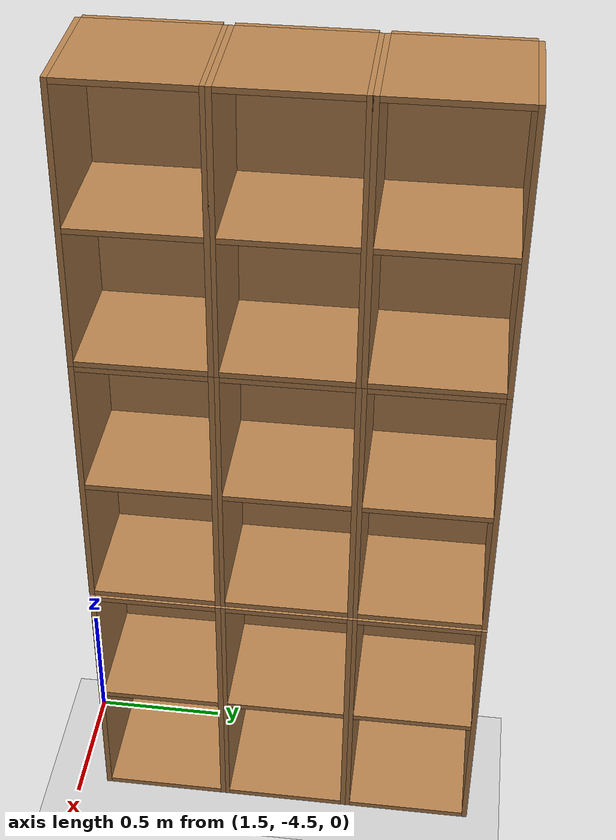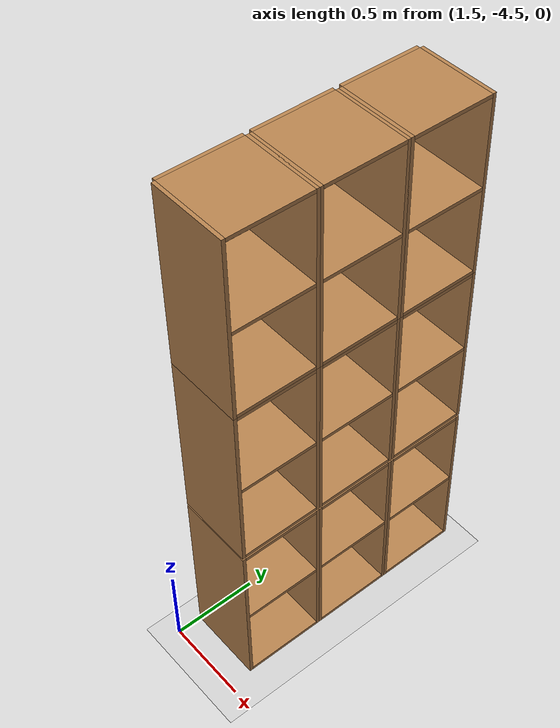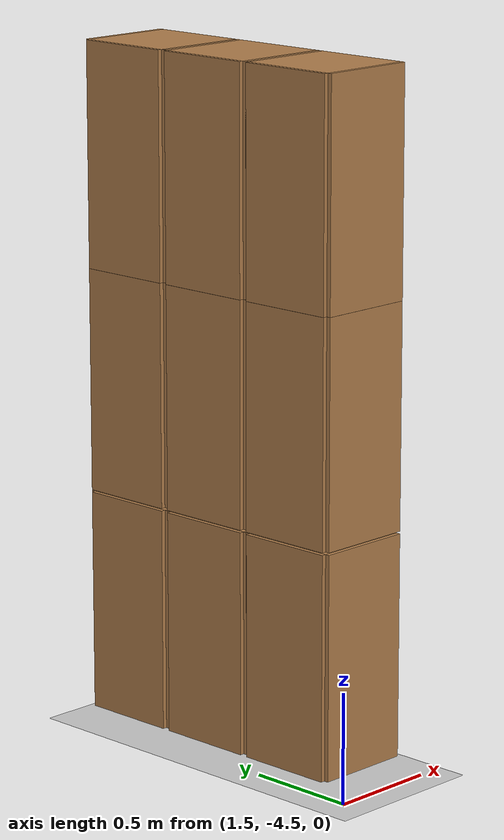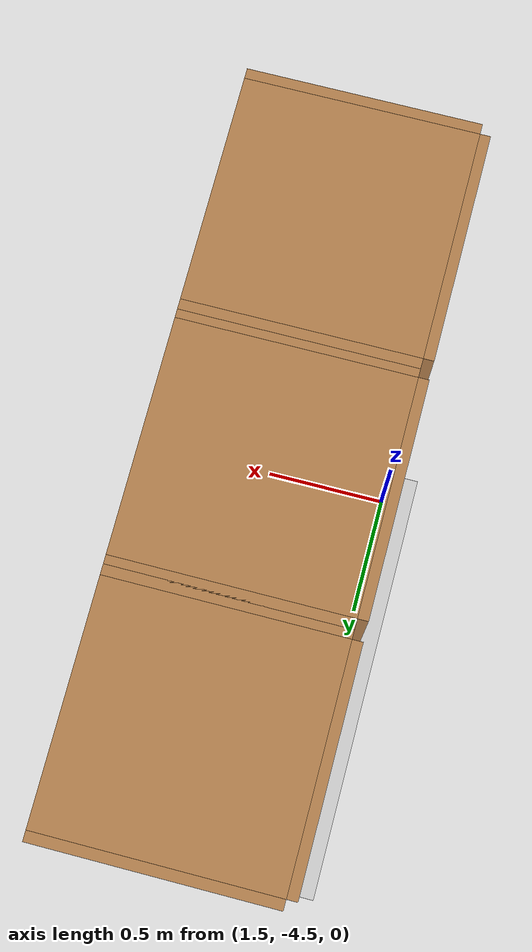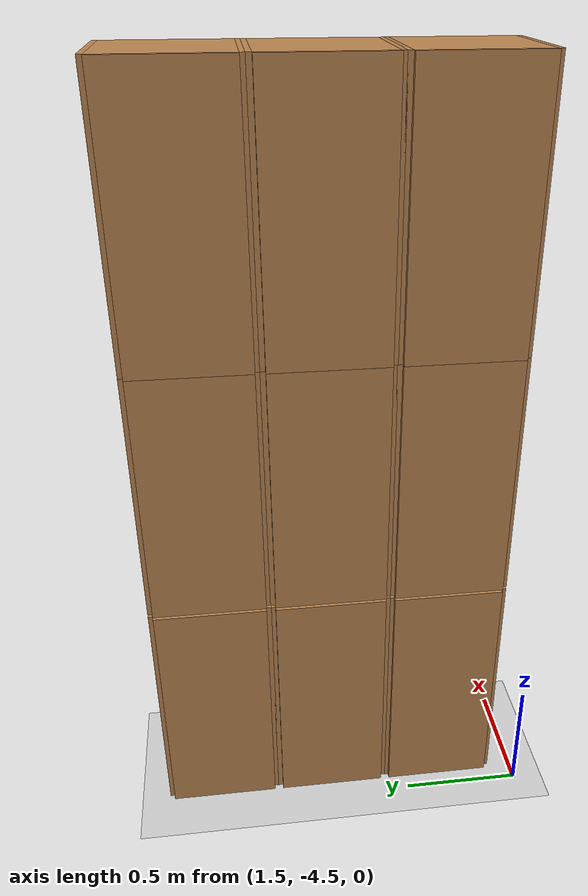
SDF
<sdf version="1.6">
 <world name="default">
  <model name="ground_plane">
   <static>1</static>
   <link name="link">
    <collision name="collision">
     <geometry><plane><normal>0 0 1</normal><size>100 100</size></plane></geometry>
     <surface>
      <contact><collide_bitmask>65535</collide_bitmask></contact>
      <friction><ode><mu>100</mu><mu2>50</mu2></ode></friction>
     </surface>
    </collision>
    <visual name="visual">
     <cast_shadows>0</cast_shadows>
     <geometry><plane><normal>0 0 1</normal><size>100 100</size></plane></geometry>
     <material>
      <script><uri>file://media/materials/scripts/gazebo.material</uri><name>Gazebo/Grey</name></script>
     </material>
    </visual>
   </link>
  </model>
  <model name="Locker18_clone_4_clone_2_clone_1_clone_clone_clone_3_clone">
   <model name="Locker18">
    <model name="Locker3">
     <model name="cabinet">
      <static>1</static>
      <link name="cabinet_bottom_plate">
       <inertial>
        <pose>0 0 -1 0 -0 0</pose>
        <inertia><ixx>2.05</ixx><ixy>0</ixy><ixz>0</ixz><iyy>2.05</iyy><iyz>0</iyz><izz>2.05</izz></inertia>
        <mass>25</mass>
       </inertial>
       <collision name="cabinet_bottom_plate_geom">
        <pose>0 0 0.01 0 -0 0</pose>
        <geometry><box><size>0.45 0.45 0.02</size></box></geometry>
       </collision>
       <visual name="cabinet_bottom_plate_geom_visual">
        <pose>0 0 0.01 0 -0 0</pose>
        <geometry><box><size>0.45 0.45 0.02</size></box></geometry>
        <material>
         <script><uri>file://media/materials/scripts/gazebo.material</uri><name>Gazebo/Wood</name></script>
        </material>
       </visual>
       <collision name="cabinet_bottom_plate_geom_cabinet_back_plate">
        <pose>0.235 0 0.51 0 -0 0</pose>
        <geometry><box><size>0.02 0.45 1.02</size></box></geometry>
       </collision>
       <visual name="cabinet_bottom_plate_geom_cabinet_back_plate_visual">
        <pose>0.235 0 0.51 0 -0 0</pose>
        <geometry><box><size>0.02 0.45 1.02</size></box></geometry>
        <material>
         <script><uri>file://media/materials/scripts/gazebo.material</uri><name>Gazebo/Wood</name></script>
        </material>
       </visual>
       <collision name="cabinet_bottom_plate_geom_cabinet_left_plate">
        <pose>0 0.235 0.51 0 -0 0</pose>
        <geometry><box><size>0.45 0.02 1.02</size></box></geometry>
       </collision>
       <visual name="cabinet_bottom_plate_geom_cabinet_left_plate_visual">
        <pose>0 0.235 0.51 0 -0 0</pose>
        <geometry><box><size>0.45 0.02 1.02</size></box></geometry>
        <material>
         <script><uri>file://media/materials/scripts/gazebo.material</uri><name>Gazebo/Wood</name></script>
        </material>
       </visual>
       <collision name="cabinet_bottom_plate_geom_cabinet_middle_plate">
        <pose>0 0 0.51 0 -0 0</pose>
        <geometry><box><size>0.45 0.45 0.02</size></box></geometry>
       </collision>
       <visual name="cabinet_bottom_plate_geom_cabinet_middle_plate_visual">
        <pose>0 0 0.51 0 -0 0</pose>
        <geometry><box><size>0.45 0.45 0.02</size></box></geometry>
        <material>
         <script><uri>file://media/materials/scripts/gazebo.material</uri><name>Gazebo/Wood</name></script>
        </material>
       </visual>
       <collision name="cabinet_bottom_plate_geom_cabinet_right_plate">
        <pose>0 -0.235 0.51 0 -0 0</pose>
        <geometry><box><size>0.45 0.02 1.02</size></box></geometry>
       </collision>
       <visual name="cabinet_bottom_plate_geom_cabinet_right_plate_visual">
        <pose>0 -0.235 0.51 0 -0 0</pose>
        <geometry><box><size>0.45 0.02 1.02</size></box></geometry>
        <material>
         <script><uri>file://media/materials/scripts/gazebo.material</uri><name>Gazebo/Wood</name></script>
        </material>
       </visual>
       <collision name="cabinet_bottom_plate_geom_cabinet_top_plate">
        <pose>0 0 1.01 0 -0 0</pose>
        <geometry><box><size>0.45 0.45 0.02</size></box></geometry>
       </collision>
       <visual name="cabinet_bottom_plate_geom_cabinet_top_plate_visual">
        <pose>0 0 1.01 0 -0 0</pose>
        <geometry><box><size>0.45 0.45 0.02</size></box></geometry>
        <material>
         <script><uri>file://media/materials/scripts/gazebo.material</uri><name>Gazebo/Wood</name></script>
        </material>
       </visual>
      </link>
      <pose>-0.676968 1.45758 0 0 -0 0</pose>
     </model>
     <model name="cabinet_clone">
      <static>1</static>
      <link name="cabinet_bottom_plate">
       <inertial>
        <pose>0 0 -1 0 -0 0</pose>
        <inertia><ixx>2.05</ixx><ixy>0</ixy><ixz>0</ixz><iyy>2.05</iyy><iyz>0</iyz><izz>2.05</izz></inertia>
        <mass>25</mass>
       </inertial>
       <collision name="cabinet_bottom_plate_geom">
        <pose>0 0 0.01 0 -0 0</pose>
        <geometry><box><size>0.45 0.45 0.02</size></box></geometry>
       </collision>
       <visual name="cabinet_bottom_plate_geom_visual">
        <pose>0 0 0.01 0 -0 0</pose>
        <geometry><box><size>0.45 0.45 0.02</size></box></geometry>
        <material>
         <script><uri>file://media/materials/scripts/gazebo.material</uri><name>Gazebo/Wood</name></script>
        </material>
       </visual>
       <collision name="cabinet_bottom_plate_geom_cabinet_back_plate">
        <pose>0.235 0 0.51 0 -0 0</pose>
        <geometry><box><size>0.02 0.45 1.02</size></box></geometry>
       </collision>
       <visual name="cabinet_bottom_plate_geom_cabinet_back_plate_visual">
        <pose>0.235 0 0.51 0 -0 0</pose>
        <geometry><box><size>0.02 0.45 1.02</size></box></geometry>
        <material>
         <script><uri>file://media/materials/scripts/gazebo.material</uri><name>Gazebo/Wood</name></script>
        </material>
       </visual>
       <collision name="cabinet_bottom_plate_geom_cabinet_left_plate">
        <pose>0 0.235 0.51 0 -0 0</pose>
        <geometry><box><size>0.45 0.02 1.02</size></box></geometry>
       </collision>
       <visual name="cabinet_bottom_plate_geom_cabinet_left_plate_visual">
        <pose>0 0.235 0.51 0 -0 0</pose>
        <geometry><box><size>0.45 0.02 1.02</size></box></geometry>
        <material>
         <script><uri>file://media/materials/scripts/gazebo.material</uri><name>Gazebo/Wood</name></script>
        </material>
       </visual>
       <collision name="cabinet_bottom_plate_geom_cabinet_middle_plate">
        <pose>0 0 0.51 0 -0 0</pose>
        <geometry><box><size>0.45 0.45 0.02</size></box></geometry>
       </collision>
       <visual name="cabinet_bottom_plate_geom_cabinet_middle_plate_visual">
        <pose>0 0 0.51 0 -0 0</pose>
        <geometry><box><size>0.45 0.45 0.02</size></box></geometry>
        <material>
         <script><uri>file://media/materials/scripts/gazebo.material</uri><name>Gazebo/Wood</name></script>
        </material>
       </visual>
       <collision name="cabinet_bottom_plate_geom_cabinet_right_plate">
        <pose>0 -0.235 0.51 0 -0 0</pose>
        <geometry><box><size>0.45 0.02 1.02</size></box></geometry>
       </collision>
       <visual name="cabinet_bottom_plate_geom_cabinet_right_plate_visual">
        <pose>0 -0.235 0.51 0 -0 0</pose>
        <geometry><box><size>0.45 0.02 1.02</size></box></geometry>
        <material>
         <script><uri>file://media/materials/scripts/gazebo.material</uri><name>Gazebo/Wood</name></script>
        </material>
       </visual>
       <collision name="cabinet_bottom_plate_geom_cabinet_top_plate">
        <pose>0 0 1.01 0 -0 0</pose>
        <geometry><box><size>0.45 0.45 0.02</size></box></geometry>
       </collision>
       <visual name="cabinet_bottom_plate_geom_cabinet_top_plate_visual">
        <pose>0 0 1.01 0 -0 0</pose>
        <geometry><box><size>0.45 0.45 0.02</size></box></geometry>
        <material>
         <script><uri>file://media/materials/scripts/gazebo.material</uri><name>Gazebo/Wood</name></script>
        </material>
       </visual>
      </link>
      <pose>-0.676968 0.970971 0 0 -0 0</pose>
     </model>
     <model name="cabinet_clone_0">
      <static>1</static>
      <link name="cabinet_bottom_plate">
       <inertial>
        <pose>0 0 -1 0 -0 0</pose>
        <inertia><ixx>2.05</ixx><ixy>0</ixy><ixz>0</ixz><iyy>2.05</iyy><iyz>0</iyz><izz>2.05</izz></inertia>
        <mass>25</mass>
       </inertial>
       <collision name="cabinet_bottom_plate_geom">
        <pose>0 0 0.01 0 -0 0</pose>
        <geometry><box><size>0.45 0.45 0.02</size></box></geometry>
       </collision>
       <visual name="cabinet_bottom_plate_geom_visual">
        <pose>0 0 0.01 0 -0 0</pose>
        <geometry><box><size>0.45 0.45 0.02</size></box></geometry>
        <material>
         <script><uri>file://media/materials/scripts/gazebo.material</uri><name>Gazebo/Wood</name></script>
        </material>
       </visual>
       <collision name="cabinet_bottom_plate_geom_cabinet_back_plate">
        <pose>0.235 0 0.51 0 -0 0</pose>
        <geometry><box><size>0.02 0.45 1.02</size></box></geometry>
       </collision>
       <visual name="cabinet_bottom_plate_geom_cabinet_back_plate_visual">
        <pose>0.235 0 0.51 0 -0 0</pose>
        <geometry><box><size>0.02 0.45 1.02</size></box></geometry>
        <material>
         <script><uri>file://media/materials/scripts/gazebo.material</uri><name>Gazebo/Wood</name></script>
        </material>
       </visual>
       <collision name="cabinet_bottom_plate_geom_cabinet_left_plate">
        <pose>0 0.235 0.51 0 -0 0</pose>
        <geometry><box><size>0.45 0.02 1.02</size></box></geometry>
       </collision>
       <visual name="cabinet_bottom_plate_geom_cabinet_left_plate_visual">
        <pose>0 0.235 0.51 0 -0 0</pose>
        <geometry><box><size>0.45 0.02 1.02</size></box></geometry>
        <material>
         <script><uri>file://media/materials/scripts/gazebo.material</uri><name>Gazebo/Wood</name></script>
        </material>
       </visual>
       <collision name="cabinet_bottom_plate_geom_cabinet_middle_plate">
        <pose>0 0 0.51 0 -0 0</pose>
        <geometry><box><size>0.45 0.45 0.02</size></box></geometry>
       </collision>
       <visual name="cabinet_bottom_plate_geom_cabinet_middle_plate_visual">
        <pose>0 0 0.51 0 -0 0</pose>
        <geometry><box><size>0.45 0.45 0.02</size></box></geometry>
        <material>
         <script><uri>file://media/materials/scripts/gazebo.material</uri><name>Gazebo/Wood</name></script>
        </material>
       </visual>
       <collision name="cabinet_bottom_plate_geom_cabinet_right_plate">
        <pose>0 -0.235 0.51 0 -0 0</pose>
        <geometry><box><size>0.45 0.02 1.02</size></box></geometry>
       </collision>
       <visual name="cabinet_bottom_plate_geom_cabinet_right_plate_visual">
        <pose>0 -0.235 0.51 0 -0 0</pose>
        <geometry><box><size>0.45 0.02 1.02</size></box></geometry>
        <material>
         <script><uri>file://media/materials/scripts/gazebo.material</uri><name>Gazebo/Wood</name></script>
        </material>
       </visual>
       <collision name="cabinet_bottom_plate_geom_cabinet_top_plate">
        <pose>0 0 1.01 0 -0 0</pose>
        <geometry><box><size>0.45 0.45 0.02</size></box></geometry>
       </collision>
       <visual name="cabinet_bottom_plate_geom_cabinet_top_plate_visual">
        <pose>0 0 1.01 0 -0 0</pose>
        <geometry><box><size>0.45 0.45 0.02</size></box></geometry>
        <material>
         <script><uri>file://media/materials/scripts/gazebo.material</uri><name>Gazebo/Wood</name></script>
        </material>
       </visual>
      </link>
      <pose>-0.676968 0.48391 0 0 -0 0</pose>
     </model>
     <static>0</static>
     <pose>0 3e-06 -1.02763 0 -0 0</pose>
    </model>
    <model name="Locker3_clone">
     <model name="cabinet">
      <static>1</static>
      <link name="cabinet_bottom_plate">
       <inertial>
        <pose>0 0 -1 0 -0 0</pose>
        <inertia><ixx>2.05</ixx><ixy>0</ixy><ixz>0</ixz><iyy>2.05</iyy><iyz>0</iyz><izz>2.05</izz></inertia>
        <mass>25</mass>
       </inertial>
       <collision name="cabinet_bottom_plate_geom">
        <pose>0 0 0.01 0 -0 0</pose>
        <geometry><box><size>0.45 0.45 0.02</size></box></geometry>
       </collision>
       <visual name="cabinet_bottom_plate_geom_visual">
        <pose>0 0 0.01 0 -0 0</pose>
        <geometry><box><size>0.45 0.45 0.02</size></box></geometry>
        <material>
         <script><uri>file://media/materials/scripts/gazebo.material</uri><name>Gazebo/Wood</name></script>
        </material>
       </visual>
       <collision name="cabinet_bottom_plate_geom_cabinet_back_plate">
        <pose>0.235 0 0.51 0 -0 0</pose>
        <geometry><box><size>0.02 0.45 1.02</size></box></geometry>
       </collision>
       <visual name="cabinet_bottom_plate_geom_cabinet_back_plate_visual">
        <pose>0.235 0 0.51 0 -0 0</pose>
        <geometry><box><size>0.02 0.45 1.02</size></box></geometry>
        <material>
         <script><uri>file://media/materials/scripts/gazebo.material</uri><name>Gazebo/Wood</name></script>
        </material>
       </visual>
       <collision name="cabinet_bottom_plate_geom_cabinet_left_plate">
        <pose>0 0.235 0.51 0 -0 0</pose>
        <geometry><box><size>0.45 0.02 1.02</size></box></geometry>
       </collision>
       <visual name="cabinet_bottom_plate_geom_cabinet_left_plate_visual">
        <pose>0 0.235 0.51 0 -0 0</pose>
        <geometry><box><size>0.45 0.02 1.02</size></box></geometry>
        <material>
         <script><uri>file://media/materials/scripts/gazebo.material</uri><name>Gazebo/Wood</name></script>
        </material>
       </visual>
       <collision name="cabinet_bottom_plate_geom_cabinet_middle_plate">
        <pose>0 0 0.51 0 -0 0</pose>
        <geometry><box><size>0.45 0.45 0.02</size></box></geometry>
       </collision>
       <visual name="cabinet_bottom_plate_geom_cabinet_middle_plate_visual">
        <pose>0 0 0.51 0 -0 0</pose>
        <geometry><box><size>0.45 0.45 0.02</size></box></geometry>
        <material>
         <script><uri>file://media/materials/scripts/gazebo.material</uri><name>Gazebo/Wood</name></script>
        </material>
       </visual>
       <collision name="cabinet_bottom_plate_geom_cabinet_right_plate">
        <pose>0 -0.235 0.51 0 -0 0</pose>
        <geometry><box><size>0.45 0.02 1.02</size></box></geometry>
       </collision>
       <visual name="cabinet_bottom_plate_geom_cabinet_right_plate_visual">
        <pose>0 -0.235 0.51 0 -0 0</pose>
        <geometry><box><size>0.45 0.02 1.02</size></box></geometry>
        <material>
         <script><uri>file://media/materials/scripts/gazebo.material</uri><name>Gazebo/Wood</name></script>
        </material>
       </visual>
       <collision name="cabinet_bottom_plate_geom_cabinet_top_plate">
        <pose>0 0 1.01 0 -0 0</pose>
        <geometry><box><size>0.45 0.45 0.02</size></box></geometry>
       </collision>
       <visual name="cabinet_bottom_plate_geom_cabinet_top_plate_visual">
        <pose>0 0 1.01 0 -0 0</pose>
        <geometry><box><size>0.45 0.45 0.02</size></box></geometry>
        <material>
         <script><uri>file://media/materials/scripts/gazebo.material</uri><name>Gazebo/Wood</name></script>
        </material>
       </visual>
      </link>
      <pose>-0.676968 1.45758 0 0 -0 0</pose>
     </model>
     <model name="cabinet_clone">
      <static>1</static>
      <link name="cabinet_bottom_plate">
       <inertial>
        <pose>0 0 -1 0 -0 0</pose>
        <inertia><ixx>2.05</ixx><ixy>0</ixy><ixz>0</ixz><iyy>2.05</iyy><iyz>0</iyz><izz>2.05</izz></inertia>
        <mass>25</mass>
       </inertial>
       <collision name="cabinet_bottom_plate_geom">
        <pose>0 0 0.01 0 -0 0</pose>
        <geometry><box><size>0.45 0.45 0.02</size></box></geometry>
       </collision>
       <visual name="cabinet_bottom_plate_geom_visual">
        <pose>0 0 0.01 0 -0 0</pose>
        <geometry><box><size>0.45 0.45 0.02</size></box></geometry>
        <material>
         <script><uri>file://media/materials/scripts/gazebo.material</uri><name>Gazebo/Wood</name></script>
        </material>
       </visual>
       <collision name="cabinet_bottom_plate_geom_cabinet_back_plate">
        <pose>0.235 0 0.51 0 -0 0</pose>
        <geometry><box><size>0.02 0.45 1.02</size></box></geometry>
       </collision>
       <visual name="cabinet_bottom_plate_geom_cabinet_back_plate_visual">
        <pose>0.235 0 0.51 0 -0 0</pose>
        <geometry><box><size>0.02 0.45 1.02</size></box></geometry>
        <material>
         <script><uri>file://media/materials/scripts/gazebo.material</uri><name>Gazebo/Wood</name></script>
        </material>
       </visual>
       <collision name="cabinet_bottom_plate_geom_cabinet_left_plate">
        <pose>0 0.235 0.51 0 -0 0</pose>
        <geometry><box><size>0.45 0.02 1.02</size></box></geometry>
       </collision>
       <visual name="cabinet_bottom_plate_geom_cabinet_left_plate_visual">
        <pose>0 0.235 0.51 0 -0 0</pose>
        <geometry><box><size>0.45 0.02 1.02</size></box></geometry>
        <material>
         <script><uri>file://media/materials/scripts/gazebo.material</uri><name>Gazebo/Wood</name></script>
        </material>
       </visual>
       <collision name="cabinet_bottom_plate_geom_cabinet_middle_plate">
        <pose>0 0 0.51 0 -0 0</pose>
        <geometry><box><size>0.45 0.45 0.02</size></box></geometry>
       </collision>
       <visual name="cabinet_bottom_plate_geom_cabinet_middle_plate_visual">
        <pose>0 0 0.51 0 -0 0</pose>
        <geometry><box><size>0.45 0.45 0.02</size></box></geometry>
        <material>
         <script><uri>file://media/materials/scripts/gazebo.material</uri><name>Gazebo/Wood</name></script>
        </material>
       </visual>
       <collision name="cabinet_bottom_plate_geom_cabinet_right_plate">
        <pose>0 -0.235 0.51 0 -0 0</pose>
        <geometry><box><size>0.45 0.02 1.02</size></box></geometry>
       </collision>
       <visual name="cabinet_bottom_plate_geom_cabinet_right_plate_visual">
        <pose>0 -0.235 0.51 0 -0 0</pose>
        <geometry><box><size>0.45 0.02 1.02</size></box></geometry>
        <material>
         <script><uri>file://media/materials/scripts/gazebo.material</uri><name>Gazebo/Wood</name></script>
        </material>
       </visual>
       <collision name="cabinet_bottom_plate_geom_cabinet_top_plate">
        <pose>0 0 1.01 0 -0 0</pose>
        <geometry><box><size>0.45 0.45 0.02</size></box></geometry>
       </collision>
       <visual name="cabinet_bottom_plate_geom_cabinet_top_plate_visual">
        <pose>0 0 1.01 0 -0 0</pose>
        <geometry><box><size>0.45 0.45 0.02</size></box></geometry>
        <material>
         <script><uri>file://media/materials/scripts/gazebo.material</uri><name>Gazebo/Wood</name></script>
        </material>
       </visual>
      </link>
      <pose>-0.676968 0.970971 0 0 -0 0</pose>
     </model>
     <model name="cabinet_clone_0">
      <static>1</static>
      <link name="cabinet_bottom_plate">
       <inertial>
        <pose>0 0 -1 0 -0 0</pose>
        <inertia><ixx>2.05</ixx><ixy>0</ixy><ixz>0</ixz><iyy>2.05</iyy><iyz>0</iyz><izz>2.05</izz></inertia>
        <mass>25</mass>
       </inertial>
       <collision name="cabinet_bottom_plate_geom">
        <pose>0 0 0.01 0 -0 0</pose>
        <geometry><box><size>0.45 0.45 0.02</size></box></geometry>
       </collision>
       <visual name="cabinet_bottom_plate_geom_visual">
        <pose>0 0 0.01 0 -0 0</pose>
        <geometry><box><size>0.45 0.45 0.02</size></box></geometry>
        <material>
         <script><uri>file://media/materials/scripts/gazebo.material</uri><name>Gazebo/Wood</name></script>
        </material>
       </visual>
       <collision name="cabinet_bottom_plate_geom_cabinet_back_plate">
        <pose>0.235 0 0.51 0 -0 0</pose>
        <geometry><box><size>0.02 0.45 1.02</size></box></geometry>
       </collision>
       <visual name="cabinet_bottom_plate_geom_cabinet_back_plate_visual">
        <pose>0.235 0 0.51 0 -0 0</pose>
        <geometry><box><size>0.02 0.45 1.02</size></box></geometry>
        <material>
         <script><uri>file://media/materials/scripts/gazebo.material</uri><name>Gazebo/Wood</name></script>
        </material>
       </visual>
       <collision name="cabinet_bottom_plate_geom_cabinet_left_plate">
        <pose>0 0.235 0.51 0 -0 0</pose>
        <geometry><box><size>0.45 0.02 1.02</size></box></geometry>
       </collision>
       <visual name="cabinet_bottom_plate_geom_cabinet_left_plate_visual">
        <pose>0 0.235 0.51 0 -0 0</pose>
        <geometry><box><size>0.45 0.02 1.02</size></box></geometry>
        <material>
         <script><uri>file://media/materials/scripts/gazebo.material</uri><name>Gazebo/Wood</name></script>
        </material>
       </visual>
       <collision name="cabinet_bottom_plate_geom_cabinet_middle_plate">
        <pose>0 0 0.51 0 -0 0</pose>
        <geometry><box><size>0.45 0.45 0.02</size></box></geometry>
       </collision>
       <visual name="cabinet_bottom_plate_geom_cabinet_middle_plate_visual">
        <pose>0 0 0.51 0 -0 0</pose>
        <geometry><box><size>0.45 0.45 0.02</size></box></geometry>
        <material>
         <script><uri>file://media/materials/scripts/gazebo.material</uri><name>Gazebo/Wood</name></script>
        </material>
       </visual>
       <collision name="cabinet_bottom_plate_geom_cabinet_right_plate">
        <pose>0 -0.235 0.51 0 -0 0</pose>
        <geometry><box><size>0.45 0.02 1.02</size></box></geometry>
       </collision>
       <visual name="cabinet_bottom_plate_geom_cabinet_right_plate_visual">
        <pose>0 -0.235 0.51 0 -0 0</pose>
        <geometry><box><size>0.45 0.02 1.02</size></box></geometry>
        <material>
         <script><uri>file://media/materials/scripts/gazebo.material</uri><name>Gazebo/Wood</name></script>
        </material>
       </visual>
       <collision name="cabinet_bottom_plate_geom_cabinet_top_plate">
        <pose>0 0 1.01 0 -0 0</pose>
        <geometry><box><size>0.45 0.45 0.02</size></box></geometry>
       </collision>
       <visual name="cabinet_bottom_plate_geom_cabinet_top_plate_visual">
        <pose>0 0 1.01 0 -0 0</pose>
        <geometry><box><size>0.45 0.45 0.02</size></box></geometry>
        <material>
         <script><uri>file://media/materials/scripts/gazebo.material</uri><name>Gazebo/Wood</name></script>
        </material>
       </visual>
      </link>
      <pose>-0.676968 0.48391 0 0 -0 0</pose>
     </model>
     <static>0</static>
     <pose>0 3e-06 0.003717 0 -0 0</pose>
    </model>
    <model name="Locker3_clone_clone">
     <model name="cabinet">
      <static>1</static>
      <link name="cabinet_bottom_plate">
       <inertial>
        <pose>0 0 -1 0 -0 0</pose>
        <inertia><ixx>2.05</ixx><ixy>0</ixy><ixz>0</ixz><iyy>2.05</iyy><iyz>0</iyz><izz>2.05</izz></inertia>
        <mass>25</mass>
       </inertial>
       <collision name="cabinet_bottom_plate_geom">
        <pose>0 0 0.01 0 -0 0</pose>
        <geometry><box><size>0.45 0.45 0.02</size></box></geometry>
       </collision>
       <visual name="cabinet_bottom_plate_geom_visual">
        <pose>0 0 0.01 0 -0 0</pose>
        <geometry><box><size>0.45 0.45 0.02</size></box></geometry>
        <material>
         <script><uri>file://media/materials/scripts/gazebo.material</uri><name>Gazebo/Wood</name></script>
        </material>
       </visual>
       <collision name="cabinet_bottom_plate_geom_cabinet_back_plate">
        <pose>0.235 0 0.51 0 -0 0</pose>
        <geometry><box><size>0.02 0.45 1.02</size></box></geometry>
       </collision>
       <visual name="cabinet_bottom_plate_geom_cabinet_back_plate_visual">
        <pose>0.235 0 0.51 0 -0 0</pose>
        <geometry><box><size>0.02 0.45 1.02</size></box></geometry>
        <material>
         <script><uri>file://media/materials/scripts/gazebo.material</uri><name>Gazebo/Wood</name></script>
        </material>
       </visual>
       <collision name="cabinet_bottom_plate_geom_cabinet_left_plate">
        <pose>0 0.235 0.51 0 -0 0</pose>
        <geometry><box><size>0.45 0.02 1.02</size></box></geometry>
       </collision>
       <visual name="cabinet_bottom_plate_geom_cabinet_left_plate_visual">
        <pose>0 0.235 0.51 0 -0 0</pose>
        <geometry><box><size>0.45 0.02 1.02</size></box></geometry>
        <material>
         <script><uri>file://media/materials/scripts/gazebo.material</uri><name>Gazebo/Wood</name></script>
        </material>
       </visual>
       <collision name="cabinet_bottom_plate_geom_cabinet_middle_plate">
        <pose>0 0 0.51 0 -0 0</pose>
        <geometry><box><size>0.45 0.45 0.02</size></box></geometry>
       </collision>
       <visual name="cabinet_bottom_plate_geom_cabinet_middle_plate_visual">
        <pose>0 0 0.51 0 -0 0</pose>
        <geometry><box><size>0.45 0.45 0.02</size></box></geometry>
        <material>
         <script><uri>file://media/materials/scripts/gazebo.material</uri><name>Gazebo/Wood</name></script>
        </material>
       </visual>
       <collision name="cabinet_bottom_plate_geom_cabinet_right_plate">
        <pose>0 -0.235 0.51 0 -0 0</pose>
        <geometry><box><size>0.45 0.02 1.02</size></box></geometry>
       </collision>
       <visual name="cabinet_bottom_plate_geom_cabinet_right_plate_visual">
        <pose>0 -0.235 0.51 0 -0 0</pose>
        <geometry><box><size>0.45 0.02 1.02</size></box></geometry>
        <material>
         <script><uri>file://media/materials/scripts/gazebo.material</uri><name>Gazebo/Wood</name></script>
        </material>
       </visual>
       <collision name="cabinet_bottom_plate_geom_cabinet_top_plate">
        <pose>0 0 1.01 0 -0 0</pose>
        <geometry><box><size>0.45 0.45 0.02</size></box></geometry>
       </collision>
       <visual name="cabinet_bottom_plate_geom_cabinet_top_plate_visual">
        <pose>0 0 1.01 0 -0 0</pose>
        <geometry><box><size>0.45 0.45 0.02</size></box></geometry>
        <material>
         <script><uri>file://media/materials/scripts/gazebo.material</uri><name>Gazebo/Wood</name></script>
        </material>
       </visual>
      </link>
      <pose>-0.676968 1.45758 0 0 -0 0</pose>
     </model>
     <model name="cabinet_clone">
      <static>1</static>
      <link name="cabinet_bottom_plate">
       <inertial>
        <pose>0 0 -1 0 -0 0</pose>
        <inertia><ixx>2.05</ixx><ixy>0</ixy><ixz>0</ixz><iyy>2.05</iyy><iyz>0</iyz><izz>2.05</izz></inertia>
        <mass>25</mass>
       </inertial>
       <collision name="cabinet_bottom_plate_geom">
        <pose>0 0 0.01 0 -0 0</pose>
        <geometry><box><size>0.45 0.45 0.02</size></box></geometry>
       </collision>
       <visual name="cabinet_bottom_plate_geom_visual">
        <pose>0 0 0.01 0 -0 0</pose>
        <geometry><box><size>0.45 0.45 0.02</size></box></geometry>
        <material>
         <script><uri>file://media/materials/scripts/gazebo.material</uri><name>Gazebo/Wood</name></script>
        </material>
       </visual>
       <collision name="cabinet_bottom_plate_geom_cabinet_back_plate">
        <pose>0.235 0 0.51 0 -0 0</pose>
        <geometry><box><size>0.02 0.45 1.02</size></box></geometry>
       </collision>
       <visual name="cabinet_bottom_plate_geom_cabinet_back_plate_visual">
        <pose>0.235 0 0.51 0 -0 0</pose>
        <geometry><box><size>0.02 0.45 1.02</size></box></geometry>
        <material>
         <script><uri>file://media/materials/scripts/gazebo.material</uri><name>Gazebo/Wood</name></script>
        </material>
       </visual>
       <collision name="cabinet_bottom_plate_geom_cabinet_left_plate">
        <pose>0 0.235 0.51 0 -0 0</pose>
        <geometry><box><size>0.45 0.02 1.02</size></box></geometry>
       </collision>
       <visual name="cabinet_bottom_plate_geom_cabinet_left_plate_visual">
        <pose>0 0.235 0.51 0 -0 0</pose>
        <geometry><box><size>0.45 0.02 1.02</size></box></geometry>
        <material>
         <script><uri>file://media/materials/scripts/gazebo.material</uri><name>Gazebo/Wood</name></script>
        </material>
       </visual>
       <collision name="cabinet_bottom_plate_geom_cabinet_middle_plate">
        <pose>0 0 0.51 0 -0 0</pose>
        <geometry><box><size>0.45 0.45 0.02</size></box></geometry>
       </collision>
       <visual name="cabinet_bottom_plate_geom_cabinet_middle_plate_visual">
        <pose>0 0 0.51 0 -0 0</pose>
        <geometry><box><size>0.45 0.45 0.02</size></box></geometry>
        <material>
         <script><uri>file://media/materials/scripts/gazebo.material</uri><name>Gazebo/Wood</name></script>
        </material>
       </visual>
       <collision name="cabinet_bottom_plate_geom_cabinet_right_plate">
        <pose>0 -0.235 0.51 0 -0 0</pose>
        <geometry><box><size>0.45 0.02 1.02</size></box></geometry>
       </collision>
       <visual name="cabinet_bottom_plate_geom_cabinet_right_plate_visual">
        <pose>0 -0.235 0.51 0 -0 0</pose>
        <geometry><box><size>0.45 0.02 1.02</size></box></geometry>
        <material>
         <script><uri>file://media/materials/scripts/gazebo.material</uri><name>Gazebo/Wood</name></script>
        </material>
       </visual>
       <collision name="cabinet_bottom_plate_geom_cabinet_top_plate">
        <pose>0 0 1.01 0 -0 0</pose>
        <geometry><box><size>0.45 0.45 0.02</size></box></geometry>
       </collision>
       <visual name="cabinet_bottom_plate_geom_cabinet_top_plate_visual">
        <pose>0 0 1.01 0 -0 0</pose>
        <geometry><box><size>0.45 0.45 0.02</size></box></geometry>
        <material>
         <script><uri>file://media/materials/scripts/gazebo.material</uri><name>Gazebo/Wood</name></script>
        </material>
       </visual>
      </link>
      <pose>-0.676968 0.970971 0 0 -0 0</pose>
     </model>
     <model name="cabinet_clone_0">
      <static>1</static>
      <link name="cabinet_bottom_plate">
       <inertial>
        <pose>0 0 -1 0 -0 0</pose>
        <inertia><ixx>2.05</ixx><ixy>0</ixy><ixz>0</ixz><iyy>2.05</iyy><iyz>0</iyz><izz>2.05</izz></inertia>
        <mass>25</mass>
       </inertial>
       <collision name="cabinet_bottom_plate_geom">
        <pose>0 0 0.01 0 -0 0</pose>
        <geometry><box><size>0.45 0.45 0.02</size></box></geometry>
       </collision>
       <visual name="cabinet_bottom_plate_geom_visual">
        <pose>0 0 0.01 0 -0 0</pose>
        <geometry><box><size>0.45 0.45 0.02</size></box></geometry>
        <material>
         <script><uri>file://media/materials/scripts/gazebo.material</uri><name>Gazebo/Wood</name></script>
        </material>
       </visual>
       <collision name="cabinet_bottom_plate_geom_cabinet_back_plate">
        <pose>0.235 0 0.51 0 -0 0</pose>
        <geometry><box><size>0.02 0.45 1.02</size></box></geometry>
       </collision>
       <visual name="cabinet_bottom_plate_geom_cabinet_back_plate_visual">
        <pose>0.235 0 0.51 0 -0 0</pose>
        <geometry><box><size>0.02 0.45 1.02</size></box></geometry>
        <material>
         <script><uri>file://media/materials/scripts/gazebo.material</uri><name>Gazebo/Wood</name></script>
        </material>
       </visual>
       <collision name="cabinet_bottom_plate_geom_cabinet_left_plate">
        <pose>0 0.235 0.51 0 -0 0</pose>
        <geometry><box><size>0.45 0.02 1.02</size></box></geometry>
       </collision>
       <visual name="cabinet_bottom_plate_geom_cabinet_left_plate_visual">
        <pose>0 0.235 0.51 0 -0 0</pose>
        <geometry><box><size>0.45 0.02 1.02</size></box></geometry>
        <material>
         <script><uri>file://media/materials/scripts/gazebo.material</uri><name>Gazebo/Wood</name></script>
        </material>
       </visual>
       <collision name="cabinet_bottom_plate_geom_cabinet_middle_plate">
        <pose>0 0 0.51 0 -0 0</pose>
        <geometry><box><size>0.45 0.45 0.02</size></box></geometry>
       </collision>
       <visual name="cabinet_bottom_plate_geom_cabinet_middle_plate_visual">
        <pose>0 0 0.51 0 -0 0</pose>
        <geometry><box><size>0.45 0.45 0.02</size></box></geometry>
        <material>
         <script><uri>file://media/materials/scripts/gazebo.material</uri><name>Gazebo/Wood</name></script>
        </material>
       </visual>
       <collision name="cabinet_bottom_plate_geom_cabinet_right_plate">
        <pose>0 -0.235 0.51 0 -0 0</pose>
        <geometry><box><size>0.45 0.02 1.02</size></box></geometry>
       </collision>
       <visual name="cabinet_bottom_plate_geom_cabinet_right_plate_visual">
        <pose>0 -0.235 0.51 0 -0 0</pose>
        <geometry><box><size>0.45 0.02 1.02</size></box></geometry>
        <material>
         <script><uri>file://media/materials/scripts/gazebo.material</uri><name>Gazebo/Wood</name></script>
        </material>
       </visual>
       <collision name="cabinet_bottom_plate_geom_cabinet_top_plate">
        <pose>0 0 1.01 0 -0 0</pose>
        <geometry><box><size>0.45 0.45 0.02</size></box></geometry>
       </collision>
       <visual name="cabinet_bottom_plate_geom_cabinet_top_plate_visual">
        <pose>0 0 1.01 0 -0 0</pose>
        <geometry><box><size>0.45 0.45 0.02</size></box></geometry>
        <material>
         <script><uri>file://media/materials/scripts/gazebo.material</uri><name>Gazebo/Wood</name></script>
        </material>
       </visual>
      </link>
      <pose>-0.676968 0.48391 0 0 -0 0</pose>
     </model>
     <static>0</static>
     <pose>0 3e-06 1.02391 0 -0 0</pose>
    </model>
    <static>0</static>
    <pose>-0 4e-06 4e-06 0 -0 0</pose>
   </model>
   <static>0</static>
   <pose>1.08178 -2.67503 1.08672 0 -0 3.14119</pose>
  </model>
 </world>
</sdf>
